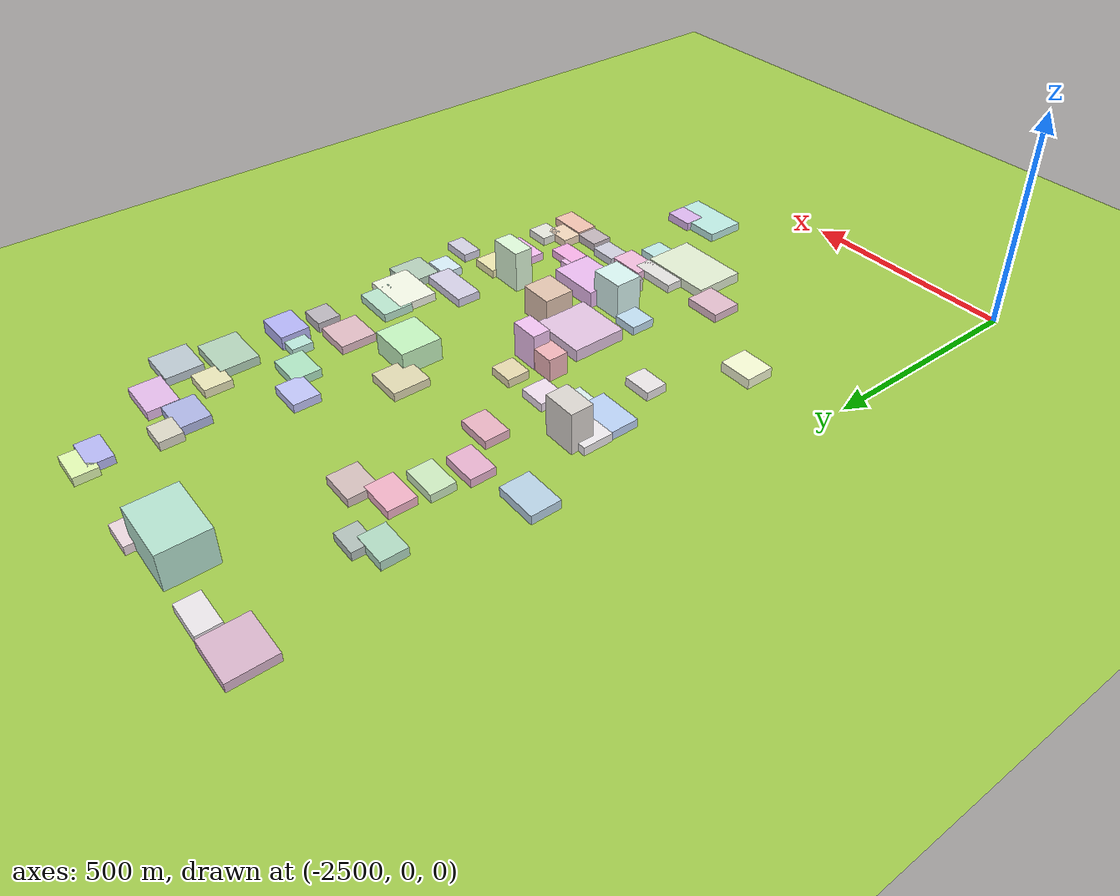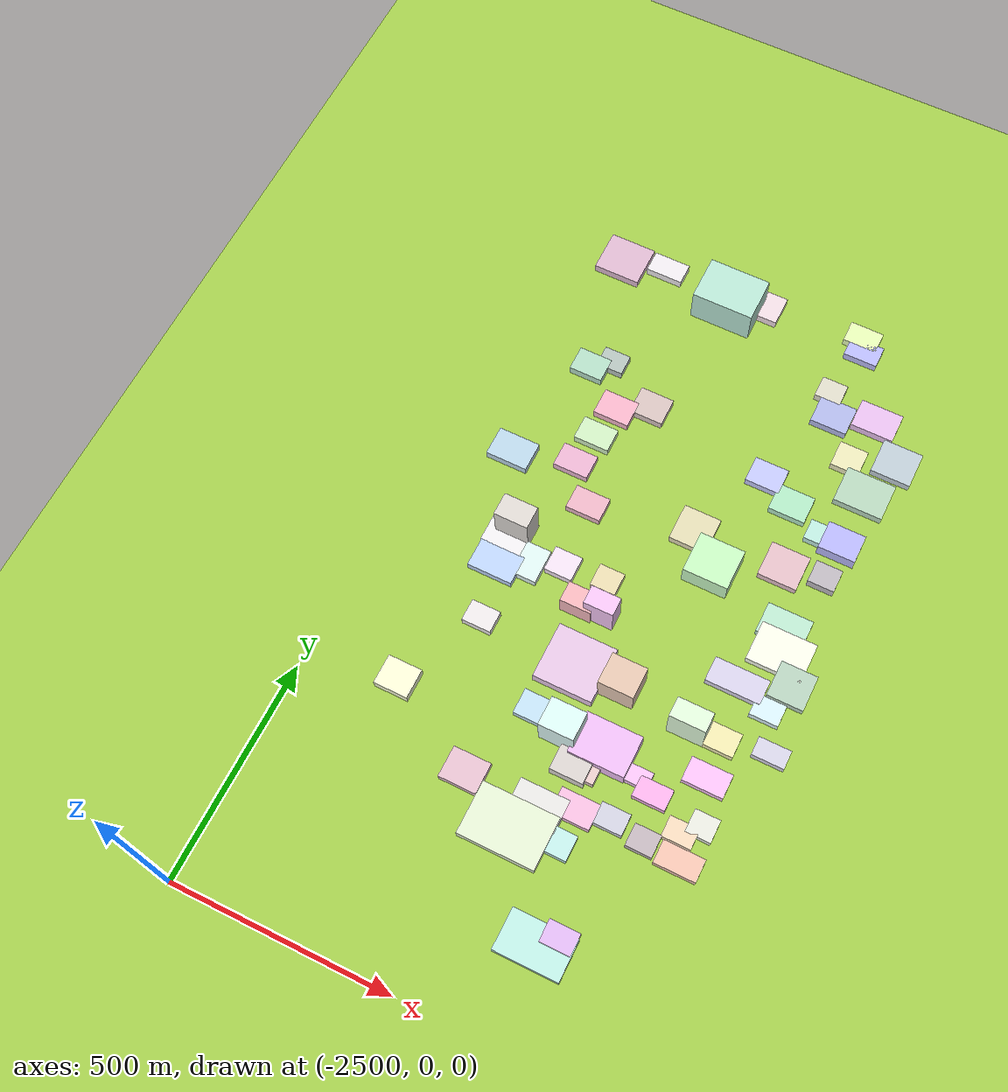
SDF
<sdf version="1.9">
 <world name="city_map">
  <model name="ground_plane">
   <static>1</static>
   <link name="link">
    <collision name="collision">
     <geometry><plane><normal>0 0 1</normal><size>11000 11000</size></plane></geometry>
    </collision>
    <visual name="visual">
     <geometry><plane><normal>0 0 1</normal><size>11000 11000</size></plane></geometry>
     <material>
      <ambient>0.551 0.712 0.210 1</ambient>
      <diffuse>0.651 0.812 0.310 1</diffuse>
      <specular>0.1 0.1 0.05 1</specular>
     </material>
    </visual>
   </link>
  </model>
  <model name="building_784531629">
   <static>1</static>
   <pose>-1949.281690694979 390.4246612366957 12.0 0 0 0</pose>
   <link name="link">
    <collision name="collision">
     <geometry><box><size>173.37089999985267 118.68830927840376 24.0</size></box></geometry>
    </collision>
    <visual name="visual">
     <cast_shadows>false</cast_shadows>
     <geometry><box><size>173.37089999985267 118.68830927840376 24.0</size></box></geometry>
     <material>
      <ambient>0.800 0.849 0.738 1</ambient>
      <diffuse>0.900 0.949 0.838 1</diffuse>
      <specular>0.270 0.285 0.252 1</specular>
      <emissive>0.01 0.01 0.01 1</emissive>
     </material>
    </visual>
   </link>
  </model>
  <model name="building_318686537">
   <static>1</static>
   <pose>-1979.383314808058 755.0847811302957 14.463169972019635 0 0 0</pose>
   <link name="link">
    <collision name="collision">
     <geometry><box><size>134.73180000023888 127.8774460867967 28.92633994403927</size></box></geometry>
    </collision>
    <visual name="visual">
     <cast_shadows>false</cast_shadows>
     <geometry><box><size>134.73180000023888 127.8774460867967 28.92633994403927</size></box></geometry>
     <material>
      <ambient>0.806 0.686 0.802 1</ambient>
      <diffuse>0.906 0.786 0.902 1</diffuse>
      <specular>0.272 0.236 0.271 1</specular>
      <emissive>0.01 0.01 0.01 1</emissive>
     </material>
    </visual>
   </link>
  </model>
  <model name="building_911968673">
   <static>1</static>
   <pose>-2047.931431842257 1699.4180093918642 42.236131468695206 0 0 0</pose>
   <link name="link">
    <collision name="collision">
     <geometry><box><size>142.9901630780476 104.65080000047067 84.47226293739041</size></box></geometry>
    </collision>
    <visual name="visual">
     <cast_shadows>false</cast_shadows>
     <geometry><box><size>142.9901630780476 104.65080000047067 84.47226293739041</size></box></geometry>
     <material>
      <ambient>0.625 0.803 0.732 1</ambient>
      <diffuse>0.725 0.903 0.832 1</diffuse>
      <specular>0.218 0.271 0.250 1</specular>
      <emissive>0.01 0.01 0.01 1</emissive>
     </material>
    </visual>
   </link>
  </model>
  <model name="building_832497104">
   <static>1</static>
   <pose>-1796.6452159532164 206.62394641435614 10.0 0 0 0</pose>
   <link name="link">
    <collision name="collision">
     <geometry><box><size>145.14138362688527 91.79700000011337 20</size></box></geometry>
    </collision>
    <visual name="visual">
     <cast_shadows>false</cast_shadows>
     <geometry><box><size>145.14138362688527 91.79700000011337 20</size></box></geometry>
     <material>
      <ambient>0.654 0.836 0.803 1</ambient>
      <diffuse>0.754 0.936 0.903 1</diffuse>
      <specular>0.226 0.281 0.271 1</specular>
      <emissive>0.01 0.01 0.01 1</emissive>
     </material>
    </visual>
   </link>
  </model>
  <model name="building_452026678">
   <static>1</static>
   <pose>-1846.4383587730215 621.4358117214804 20.262774250292598 0 0 0</pose>
   <link name="link">
    <collision name="collision">
     <geometry><box><size>126.6176999992723 94.31688275214437 40.525548500585195</size></box></geometry>
    </collision>
    <visual name="visual">
     <cast_shadows>false</cast_shadows>
     <geometry><box><size>126.6176999992723 94.31688275214437 40.525548500585195</size></box></geometry>
     <material>
      <ambient>0.838 0.650 0.858 1</ambient>
      <diffuse>0.938 0.750 0.958 1</diffuse>
      <specular>0.281 0.225 0.287 1</specular>
      <emissive>0.01 0.01 0.01 1</emissive>
     </material>
    </visual>
   </link>
  </model>
  <model name="building_316258750">
   <static>1</static>
   <pose>-1605.084572294025 968.8933447359544 10.0 0 0 0</pose>
   <link name="link">
    <collision name="collision">
     <geometry><box><size>125.00180049665161 91.64159999987476 20</size></box></geometry>
    </collision>
    <visual name="visual">
     <cast_shadows>false</cast_shadows>
     <geometry><box><size>125.00180049665161 91.64159999987476 20</size></box></geometry>
     <material>
      <ambient>0.872 0.888 0.818 1</ambient>
      <diffuse>0.972 0.988 0.918 1</diffuse>
      <specular>0.292 0.296 0.275 1</specular>
      <emissive>0.01 0.01 0.01 1</emissive>
     </material>
    </visual>
   </link>
  </model>
  <model name="building_733829572">
   <static>1</static>
   <pose>-2316.1012690740595 1708.9561754167369 10.0 0 0 0</pose>
   <link name="link">
    <collision name="collision">
     <geometry><box><size>107.51460000002311 96.89544181515132 20</size></box></geometry>
    </collision>
    <visual name="visual">
     <cast_shadows>false</cast_shadows>
     <geometry><box><size>107.51460000002311 96.89544181515132 20</size></box></geometry>
     <material>
      <ambient>0.770 0.627 0.718 1</ambient>
      <diffuse>0.870 0.727 0.818 1</diffuse>
      <specular>0.261 0.218 0.245 1</specular>
      <emissive>0.01 0.01 0.01 1</emissive>
     </material>
    </visual>
   </link>
  </model>
  <model name="building_379907250">
   <static>1</static>
   <pose>-1812.9707138432793 1081.4573936623158 27.0 0 0 0</pose>
   <link name="link">
    <collision name="collision">
     <geometry><box><size>102.76904150693875 95.02710000000292 54.0</size></box></geometry>
    </collision>
    <visual name="visual">
     <cast_shadows>false</cast_shadows>
     <geometry><box><size>102.76904150693875 95.02710000000292 54.0</size></box></geometry>
     <material>
      <ambient>0.684 0.874 0.665 1</ambient>
      <diffuse>0.784 0.974 0.765 1</diffuse>
      <specular>0.235 0.292 0.229 1</specular>
      <emissive>0.01 0.01 0.01 1</emissive>
     </material>
    </visual>
   </link>
  </model>
  <model name="building_130134647">
   <static>1</static>
   <pose>-1586.8013513641895 1387.037816854881 10.5 0 0 0</pose>
   <link name="link">
    <collision name="collision">
     <geometry><box><size>112.29677394903052 86.66880000012611 21.0</size></box></geometry>
    </collision>
    <visual name="visual">
     <cast_shadows>false</cast_shadows>
     <geometry><box><size>112.29677394903052 86.66880000012611 21.0</size></box></geometry>
     <material>
      <ambient>0.621 0.744 0.645 1</ambient>
      <diffuse>0.721 0.844 0.745 1</diffuse>
      <specular>0.216 0.253 0.224 1</specular>
      <emissive>0.01 0.01 0.01 1</emissive>
     </material>
    </visual>
   </link>
  </model>
  <model name="building_596379735">
   <static>1</static>
   <pose>-1915.902425725591 451.3255763390979 10.0 0 0 0</pose>
   <link name="link">
    <collision name="collision">
     <geometry><box><size>110.78909999964281 77.81463291668645 20</size></box></geometry>
    </collision>
    <visual name="visual">
     <cast_shadows>false</cast_shadows>
     <geometry><box><size>110.78909999964281 77.81463291668645 20</size></box></geometry>
     <material>
      <ambient>0.809 0.806 0.798 1</ambient>
      <diffuse>0.909 0.906 0.898 1</diffuse>
      <specular>0.273 0.272 0.269 1</specular>
      <emissive>0.01 0.01 0.01 1</emissive>
     </material>
    </visual>
   </link>
  </model>
  <model name="building_92837957">
   <static>1</static>
   <pose>-1550.6684819677523 1487.3604151621364 10.0 0 0 0</pose>
   <link name="link">
    <collision name="collision">
     <geometry><box><size>90.98670000010856 83.53715623528005 20</size></box></geometry>
    </collision>
    <visual name="visual">
     <cast_shadows>false</cast_shadows>
     <geometry><box><size>90.98670000010856 83.53715623528005 20</size></box></geometry>
     <material>
      <ambient>0.651 0.701 0.737 1</ambient>
      <diffuse>0.751 0.801 0.837 1</diffuse>
      <specular>0.225 0.240 0.251 1</specular>
      <emissive>0.01 0.01 0.01 1</emissive>
     </material>
    </visual>
   </link>
  </model>
  <model name="building_165059865">
   <static>1</static>
   <pose>-2184.615501969425 921.5501935525426 10.0 0 0 0</pose>
   <link name="link">
    <collision name="collision">
     <geometry><box><size>95.48220000058905 79.15081115538072 20</size></box></geometry>
    </collision>
    <visual name="visual">
     <cast_shadows>false</cast_shadows>
     <geometry><box><size>95.48220000058905 79.15081115538072 20</size></box></geometry>
     <material>
      <ambient>0.778 0.858 0.851 1</ambient>
      <diffuse>0.878 0.958 0.951 1</diffuse>
      <specular>0.264 0.287 0.285 1</specular>
      <emissive>0.01 0.01 0.01 1</emissive>
     </material>
    </visual>
   </link>
  </model>
  <model name="building_528338264">
   <static>1</static>
   <pose>-1621.8229608934544 1023.7256231455665 10.0 0 0 0</pose>
   <link name="link">
    <collision name="collision">
     <geometry><box><size>102.91887014322202 70.94010000008666 20</size></box></geometry>
    </collision>
    <visual name="visual">
     <cast_shadows>false</cast_shadows>
     <geometry><box><size>102.91887014322202 70.94010000008666 20</size></box></geometry>
     <material>
      <ambient>0.644 0.815 0.721 1</ambient>
      <diffuse>0.744 0.915 0.821 1</diffuse>
      <specular>0.223 0.275 0.246 1</specular>
      <emissive>0.01 0.01 0.01 1</emissive>
     </material>
    </visual>
   </link>
  </model>
  <model name="building_468145141">
   <static>1</static>
   <pose>-1676.9928165639285 1150.9171008150838 10.0 0 0 0</pose>
   <link name="link">
    <collision name="collision">
     <geometry><box><size>88.63447099138845 82.31759999975452 20</size></box></geometry>
    </collision>
    <visual name="visual">
     <cast_shadows>false</cast_shadows>
     <geometry><box><size>88.63447099138845 82.31759999975452 20</size></box></geometry>
     <material>
      <ambient>0.797 0.652 0.686 1</ambient>
      <diffuse>0.897 0.752 0.786 1</diffuse>
      <specular>0.269 0.226 0.236 1</specular>
      <emissive>0.01 0.01 0.01 1</emissive>
     </material>
    </visual>
   </link>
  </model>
  <model name="building_105975189">
   <static>1</static>
   <pose>-1883.06066906498 1146.481777539104 10.0 0 0 0</pose>
   <link name="link">
    <collision name="collision">
     <geometry><box><size>85.30349999994513 85.00151773802787 20</size></box></geometry>
    </collision>
    <visual name="visual">
     <cast_shadows>false</cast_shadows>
     <geometry><box><size>85.30349999994513 85.00151773802787 20</size></box></geometry>
     <material>
      <ambient>0.794 0.766 0.615 1</ambient>
      <diffuse>0.894 0.866 0.715 1</diffuse>
      <specular>0.268 0.260 0.214 1</specular>
      <emissive>0.01 0.01 0.01 1</emissive>
     </material>
    </visual>
   </link>
  </model>
  <model name="building_154736615">
   <static>1</static>
   <pose>-1662.2643469641407 870.4580174370398 10.5 0 0 0</pose>
   <link name="link">
    <collision name="collision">
     <geometry><box><size>123.77522986772952 56.70989999941867 21.0</size></box></geometry>
    </collision>
    <visual name="visual">
     <cast_shadows>false</cast_shadows>
     <geometry><box><size>123.77522986772952 56.70989999941867 21.0</size></box></geometry>
     <material>
      <ambient>0.751 0.731 0.821 1</ambient>
      <diffuse>0.851 0.831 0.921 1</diffuse>
      <specular>0.255 0.249 0.276 1</specular>
      <emissive>0.01 0.01 0.01 1</emissive>
     </material>
    </visual>
   </link>
  </model>
  <model name="building_281971564">
   <static>1</static>
   <pose>-2233.7528420950734 890.0766380424536 10.0 0 0 0</pose>
   <link name="link">
    <collision name="collision">
     <geometry><box><size>103.52969999998862 66.2194411822157 20</size></box></geometry>
    </collision>
    <visual name="visual">
     <cast_shadows>false</cast_shadows>
     <geometry><box><size>103.52969999998862 66.2194411822157 20</size></box></geometry>
     <material>
      <ambient>0.648 0.739 0.879 1</ambient>
      <diffuse>0.748 0.839 0.979 1</diffuse>
      <specular>0.224 0.252 0.294 1</specular>
      <emissive>0.01 0.01 0.01 1</emissive>
     </material>
    </visual>
   </link>
  </model>
  <model name="building_222092516">
   <static>1</static>
   <pose>-1628.4968522832385 1566.402666893458 10.5 0 0 0</pose>
   <link name="link">
    <collision name="collision">
     <geometry><box><size>98.23495010766914 68.7201000001707 21.0</size></box></geometry>
    </collision>
    <visual name="visual">
     <cast_shadows>false</cast_shadows>
     <geometry><box><size>98.23495010766914 68.7201000001707 21.0</size></box></geometry>
     <material>
      <ambient>0.810 0.652 0.833 1</ambient>
      <diffuse>0.910 0.752 0.933 1</diffuse>
      <specular>0.273 0.226 0.280 1</specular>
      <emissive>0.01 0.01 0.01 1</emissive>
     </material>
    </visual>
   </link>
  </model>
  <model name="building_219024905">
   <static>1</static>
   <pose>-1556.0352847130846 909.6141433605732 10.0 0 0 0</pose>
   <link name="link">
    <collision name="collision">
     <geometry><box><size>82.15110000017489 82.1290436276584 20</size></box></geometry>
    </collision>
    <visual name="visual">
     <cast_shadows>false</cast_shadows>
     <geometry><box><size>82.15110000017489 82.1290436276584 20</size></box></geometry>
     <material>
      <ambient>0.623 0.724 0.649 1</ambient>
      <diffuse>0.723 0.824 0.749 1</diffuse>
      <specular>0.217 0.247 0.225 1</specular>
      <emissive>0.01 0.01 0.01 1</emissive>
     </material>
    </visual>
   </link>
  </model>
  <model name="building_206532737">
   <static>1</static>
   <pose>-2240.9730802927484 957.4037146306335 10.0 0 0 0</pose>
   <link name="link">
    <collision name="collision">
     <geometry><box><size>93.82829999940157 69.98646413571788 20</size></box></geometry>
    </collision>
    <visual name="visual">
     <cast_shadows>false</cast_shadows>
     <geometry><box><size>93.82829999940157 69.98646413571788 20</size></box></geometry>
     <material>
      <ambient>0.846 0.835 0.845 1</ambient>
      <diffuse>0.946 0.935 0.945 1</diffuse>
      <specular>0.284 0.281 0.283 1</specular>
      <emissive>0.01 0.01 0.01 1</emissive>
     </material>
    </visual>
   </link>
  </model>
  <model name="building_82842089">
   <static>1</static>
   <pose>-2323.8473167542215 1146.6236569718046 10.5 0 0 0</pose>
   <link name="link">
    <collision name="collision">
     <geometry><box><size>96.30359999993487 67.96485911413048 21.0</size></box></geometry>
    </collision>
    <visual name="visual">
     <cast_shadows>false</cast_shadows>
     <geometry><box><size>96.30359999993487 67.96485911413048 21.0</size></box></geometry>
     <material>
      <ambient>0.636 0.742 0.815 1</ambient>
      <diffuse>0.736 0.842 0.915 1</diffuse>
      <specular>0.221 0.253 0.274 1</specular>
      <emissive>0.01 0.01 0.01 1</emissive>
     </material>
    </visual>
   </link>
  </model>
  <model name="building_4440151">
   <static>1</static>
   <pose>-2080.3256446305936 453.643795480554 10.0 0 0 0</pose>
   <link name="link">
    <collision name="collision">
     <geometry><box><size>85.58100000003321 70.25054797653505 20</size></box></geometry>
    </collision>
    <visual name="visual">
     <cast_shadows>false</cast_shadows>
     <geometry><box><size>85.58100000003321 70.25054797653505 20</size></box></geometry>
     <material>
      <ambient>0.802 0.658 0.717 1</ambient>
      <diffuse>0.902 0.758 0.817 1</diffuse>
      <specular>0.271 0.227 0.245 1</specular>
      <emissive>0.01 0.01 0.01 1</emissive>
     </material>
    </visual>
   </link>
  </model>
  <model name="building_173963869">
   <static>1</static>
   <pose>-1721.0536212428456 1537.6081630032209 10.5 0 0 0</pose>
   <link name="link">
    <collision name="collision">
     <geometry><box><size>83.91600000029342 69.18151599846756 21.0</size></box></geometry>
    </collision>
    <visual name="visual">
     <cast_shadows>false</cast_shadows>
     <geometry><box><size>83.91600000029342 69.18151599846756 21.0</size></box></geometry>
     <material>
      <ambient>0.602 0.629 0.813 1</ambient>
      <diffuse>0.702 0.729 0.913 1</diffuse>
      <specular>0.211 0.219 0.274 1</specular>
      <emissive>0.01 0.01 0.01 1</emissive>
     </material>
    </visual>
   </link>
  </model>
  <model name="building_804866573">
   <static>1</static>
   <pose>-1874.081465656565 759.173444279169 36.01048363562211 0 0 0</pose>
   <link name="link">
    <collision name="collision">
     <geometry><box><size>80.08649999970885 71.11721533385357 72.02096727124422</size></box></geometry>
    </collision>
    <visual name="visual">
     <cast_shadows>false</cast_shadows>
     <geometry><box><size>80.08649999970885 71.11721533385357 72.02096727124422</size></box></geometry>
     <material>
      <ambient>0.800 0.682 0.602 1</ambient>
      <diffuse>0.900 0.782 0.702 1</diffuse>
      <specular>0.270 0.235 0.211 1</specular>
      <emissive>0.01 0.01 0.01 1</emissive>
     </material>
    </visual>
   </link>
  </model>
  <model name="building_269107770">
   <static>1</static>
   <pose>-1586.9590594879398 1251.5100188763417 16.2823930991139 0 0 0</pose>
   <link name="link">
    <collision name="collision">
     <geometry><box><size>84.7838050502295 66.07830000005777 32.5647861982278</size></box></geometry>
    </collision>
    <visual name="visual">
     <cast_shadows>false</cast_shadows>
     <geometry><box><size>84.7838050502295 66.07830000005777 32.5647861982278</size></box></geometry>
     <material>
      <ambient>0.625 0.622 0.882 1</ambient>
      <diffuse>0.725 0.722 0.982 1</diffuse>
      <specular>0.218 0.217 0.295 1</specular>
      <emissive>0.01 0.01 0.01 1</emissive>
     </material>
    </visual>
   </link>
  </model>
  <model name="building_345595790">
   <static>1</static>
   <pose>-1719.6836595675263 1294.7557475760782 10.0 0 0 0</pose>
   <link name="link">
    <collision name="collision">
     <geometry><box><size>83.8272000000444 64.48518097197544 20</size></box></geometry>
    </collision>
    <visual name="visual">
     <cast_shadows>false</cast_shadows>
     <geometry><box><size>83.8272000000444 64.48518097197544 20</size></box></geometry>
     <material>
      <ambient>0.602 0.816 0.678 1</ambient>
      <diffuse>0.702 0.916 0.778 1</diffuse>
      <specular>0.211 0.275 0.233 1</specular>
      <emissive>0.01 0.01 0.01 1</emissive>
     </material>
    </visual>
   </link>
  </model>
  <model name="building_591548647">
   <static>1</static>
   <pose>-2296.291385364833 568.1208257094179 12.0 0 0 0</pose>
   <link name="link">
    <collision name="collision">
     <geometry><box><size>78.02870846394796 67.53239999969907 24.0</size></box></geometry>
    </collision>
    <visual name="visual">
     <cast_shadows>false</cast_shadows>
     <geometry><box><size>78.02870846394796 67.53239999969907 24.0</size></box></geometry>
     <material>
      <ambient>0.879 0.899 0.747 1</ambient>
      <diffuse>0.979 0.999 0.847 1</diffuse>
      <specular>0.294 0.300 0.254 1</specular>
      <emissive>0.01 0.01 0.01 1</emissive>
     </material>
    </visual>
   </link>
  </model>
  <model name="building_135750264">
   <static>1</static>
   <pose>-2163.510883217828 1340.7913165472007 10.0 0 0 0</pose>
   <link name="link">
    <collision name="collision">
     <geometry><box><size>82.83930000033024 62.62788630456443 20</size></box></geometry>
    </collision>
    <visual name="visual">
     <cast_shadows>false</cast_shadows>
     <geometry><box><size>82.83930000033024 62.62788630456443 20</size></box></geometry>
     <material>
      <ambient>0.862 0.615 0.693 1</ambient>
      <diffuse>0.962 0.715 0.793 1</diffuse>
      <specular>0.289 0.215 0.238 1</specular>
      <emissive>0.01 0.01 0.01 1</emissive>
     </material>
    </visual>
   </link>
  </model>
  <model name="building_414592736">
   <static>1</static>
   <pose>-1941.1829948605491 618.5149115384679 44.306683381385504 0 0 0</pose>
   <link name="link">
    <collision name="collision">
     <geometry><box><size>79.60138271308135 65.1570000003332 88.61336676277101</size></box></geometry>
    </collision>
    <visual name="visual">
     <cast_shadows>false</cast_shadows>
     <geometry><box><size>79.60138271308135 65.1570000003332 88.61336676277101</size></box></geometry>
     <material>
      <ambient>0.764 0.877 0.860 1</ambient>
      <diffuse>0.864 0.977 0.960 1</diffuse>
      <specular>0.259 0.293 0.288 1</specular>
      <emissive>0.01 0.01 0.01 1</emissive>
     </material>
    </visual>
   </link>
  </model>
  <model name="building_212145788">
   <static>1</static>
   <pose>-2094.8257158364654 1379.845643463711 10.0 0 0 0</pose>
   <link name="link">
    <collision name="collision">
     <geometry><box><size>78.13290000053996 65.63207744373817 20</size></box></geometry>
    </collision>
    <visual name="visual">
     <cast_shadows>false</cast_shadows>
     <geometry><box><size>78.13290000053996 65.63207744373817 20</size></box></geometry>
     <material>
      <ambient>0.747 0.667 0.656 1</ambient>
      <diffuse>0.847 0.767 0.756 1</diffuse>
      <specular>0.254 0.230 0.227 1</specular>
      <emissive>0.01 0.01 0.01 1</emissive>
     </material>
    </visual>
   </link>
  </model>
  <model name="building_407335049">
   <static>1</static>
   <pose>-1634.2244947687516 655.155693163705 10.0 0 0 0</pose>
   <link name="link">
    <collision name="collision">
     <geometry><box><size>91.89847814159302 54.67860000013047 20</size></box></geometry>
    </collision>
    <visual name="visual">
     <cast_shadows>false</cast_shadows>
     <geometry><box><size>91.89847814159302 54.67860000013047 20</size></box></geometry>
     <material>
      <ambient>0.887 0.668 0.866 1</ambient>
      <diffuse>0.987 0.768 0.966 1</diffuse>
      <specular>0.296 0.230 0.290 1</specular>
      <emissive>0.01 0.01 0.01 1</emissive>
     </material>
    </visual>
   </link>
  </model>
  <model name="building_220801282">
   <static>1</static>
   <pose>-1845.2198424690512 480.87254539603265 10.0 0 0 0</pose>
   <link name="link">
    <collision name="collision">
     <geometry><box><size>87.04619999980423 57.607420298761376 20</size></box></geometry>
    </collision>
    <visual name="visual">
     <cast_shadows>false</cast_shadows>
     <geometry><box><size>87.04619999980423 57.607420298761376 20</size></box></geometry>
     <material>
      <ambient>0.862 0.655 0.784 1</ambient>
      <diffuse>0.962 0.755 0.884 1</diffuse>
      <specular>0.289 0.226 0.265 1</specular>
      <emissive>0.01 0.01 0.01 1</emissive>
     </material>
    </visual>
   </link>
  </model>
  <model name="building_130487179">
   <static>1</static>
   <pose>-1965.9123874164497 1736.339914134098 10.0 0 0 0</pose>
   <link name="link">
    <collision name="collision">
     <geometry><box><size>69.89435270820228 69.8855999995942 20</size></box></geometry>
    </collision>
    <visual name="visual">
     <cast_shadows>false</cast_shadows>
     <geometry><box><size>69.89435270820228 69.8855999995942 20</size></box></geometry>
     <material>
      <ambient>0.842 0.765 0.793 1</ambient>
      <diffuse>0.942 0.865 0.893 1</diffuse>
      <specular>0.282 0.260 0.268 1</specular>
      <emissive>0.01 0.01 0.01 1</emissive>
     </material>
    </visual>
   </link>
  </model>
  <model name="building_169510429">
   <static>1</static>
   <pose>-1614.434716441937 476.15770184324293 10.0 0 0 0</pose>
   <link name="link">
    <collision name="collision">
     <geometry><box><size>93.2729183515675 51.22650000001272 20</size></box></geometry>
    </collision>
    <visual name="visual">
     <cast_shadows>false</cast_shadows>
     <geometry><box><size>93.2729183515675 51.22650000001272 20</size></box></geometry>
     <material>
      <ambient>0.859 0.676 0.604 1</ambient>
      <diffuse>0.959 0.776 0.704 1</diffuse>
      <specular>0.288 0.233 0.211 1</specular>
      <emissive>0.01 0.01 0.01 1</emissive>
     </material>
    </visual>
   </link>
  </model>
  <model name="building_343033802">
   <static>1</static>
   <pose>-1794.6278428711403 1333.9506324589547 10.0 0 0 0</pose>
   <link name="link">
    <collision name="collision">
     <geometry><box><size>78.441821751432 60.839100000350754 20</size></box></geometry>
    </collision>
    <visual name="visual">
     <cast_shadows>false</cast_shadows>
     <geometry><box><size>78.441821751432 60.839100000350754 20</size></box></geometry>
     <material>
      <ambient>0.672 0.688 0.890 1</ambient>
      <diffuse>0.772 0.788 0.990 1</diffuse>
      <specular>0.232 0.236 0.297 1</specular>
      <emissive>0.01 0.01 0.01 1</emissive>
     </material>
    </visual>
   </link>
  </model>
  <model name="building_124606818">
   <static>1</static>
   <pose>-2187.1576845077584 1181.7812688773429 10.0 0 0 0</pose>
   <link name="link">
    <collision name="collision">
     <geometry><box><size>80.9223354737312 57.40919999970373 20</size></box></geometry>
    </collision>
    <visual name="visual">
     <cast_shadows>false</cast_shadows>
     <geometry><box><size>80.9223354737312 57.40919999970373 20</size></box></geometry>
     <material>
      <ambient>0.823 0.614 0.725 1</ambient>
      <diffuse>0.923 0.714 0.825 1</diffuse>
      <specular>0.277 0.214 0.247 1</specular>
      <emissive>0.01 0.01 0.01 1</emissive>
     </material>
    </visual>
   </link>
  </model>
  <model name="building_450889549">
   <static>1</static>
   <pose>-2175.4715764476905 1261.6656103774376 10.0 0 0 0</pose>
   <link name="link">
    <collision name="collision">
     <geometry><box><size>82.0844999993966 56.301744116810276 20</size></box></geometry>
    </collision>
    <visual name="visual">
     <cast_shadows>false</cast_shadows>
     <geometry><box><size>82.0844999993966 56.301744116810276 20</size></box></geometry>
     <material>
      <ambient>0.719 0.837 0.668 1</ambient>
      <diffuse>0.819 0.937 0.768 1</diffuse>
      <specular>0.246 0.281 0.231 1</specular>
      <emissive>0.01 0.01 0.01 1</emissive>
     </material>
    </visual>
   </link>
  </model>
  <model name="building_112352581">
   <static>1</static>
   <pose>-2117.1171057028737 1100.3683148354992 10.0 0 0 0</pose>
   <link name="link">
    <collision name="collision">
     <geometry><box><size>80.12702840903204 56.976300000165736 20</size></box></geometry>
    </collision>
    <visual name="visual">
     <cast_shadows>false</cast_shadows>
     <geometry><box><size>80.12702840903204 56.976300000165736 20</size></box></geometry>
     <material>
      <ambient>0.827 0.618 0.679 1</ambient>
      <diffuse>0.927 0.718 0.779 1</diffuse>
      <specular>0.278 0.215 0.234 1</specular>
      <emissive>0.01 0.01 0.01 1</emissive>
     </material>
    </visual>
   </link>
  </model>
  <model name="building_590504142">
   <static>1</static>
   <pose>-1889.8094453491508 558.328116612123 15.78554117378804 0 0 0</pose>
   <link name="link">
    <collision name="collision">
     <geometry><box><size>75.4022999993893 59.74740563697774 31.57108234757608</size></box></geometry>
    </collision>
    <visual name="visual">
     <cast_shadows>false</cast_shadows>
     <geometry><box><size>75.4022999993893 59.74740563697774 31.57108234757608</size></box></geometry>
     <material>
      <ambient>0.757 0.731 0.718 1</ambient>
      <diffuse>0.857 0.831 0.818 1</diffuse>
      <specular>0.257 0.249 0.245 1</specular>
      <emissive>0.01 0.01 0.01 1</emissive>
     </material>
    </visual>
   </link>
  </model>
  <model name="building_372750752">
   <static>1</static>
   <pose>-2263.6130667873717 1416.3324795233066 10.5 0 0 0</pose>
   <link name="link">
    <collision name="collision">
     <geometry><box><size>77.13721205523511 57.875400000419575 21.0</size></box></geometry>
    </collision>
    <visual name="visual">
     <cast_shadows>false</cast_shadows>
     <geometry><box><size>77.13721205523511 57.875400000419575 21.0</size></box></geometry>
     <material>
      <ambient>0.611 0.771 0.680 1</ambient>
      <diffuse>0.711 0.871 0.780 1</diffuse>
      <specular>0.213 0.261 0.234 1</specular>
      <emissive>0.01 0.01 0.01 1</emissive>
     </material>
    </visual>
   </link>
  </model>
  <model name="building_695843956">
   <static>1</static>
   <pose>-1871.5829307462589 567.8539578870929 10.0 0 0 0</pose>
   <link name="link">
    <collision name="collision">
     <geometry><box><size>73.89269999988812 58.335782679989315 20</size></box></geometry>
    </collision>
    <visual name="visual">
     <cast_shadows>false</cast_shadows>
     <geometry><box><size>73.89269999988812 58.335782679989315 20</size></box></geometry>
     <material>
      <ambient>0.819 0.708 0.704 1</ambient>
      <diffuse>0.919 0.808 0.804 1</diffuse>
      <specular>0.276 0.242 0.241 1</specular>
      <emissive>0.01 0.01 0.01 1</emissive>
     </material>
    </visual>
   </link>
  </model>
  <model name="building_971585615">
   <static>1</static>
   <pose>-2214.6075985917228 1730.3848698375457 10.0 0 0 0</pose>
   <link name="link">
    <collision name="collision">
     <geometry><box><size>85.41001039775423 49.88340000009117 20</size></box></geometry>
    </collision>
    <visual name="visual">
     <cast_shadows>false</cast_shadows>
     <geometry><box><size>85.41001039775423 49.88340000009117 20</size></box></geometry>
     <material>
      <ambient>0.837 0.818 0.835 1</ambient>
      <diffuse>0.937 0.918 0.935 1</diffuse>
      <specular>0.281 0.275 0.280 1</specular>
      <emissive>0.01 0.01 0.01 1</emissive>
     </material>
    </visual>
   </link>
  </model>
  <model name="building_159728683">
   <static>1</static>
   <pose>-1852.0130257849537 404.1184266457156 10.0 0 0 0</pose>
   <link name="link">
    <collision name="collision">
     <geometry><box><size>73.5819000001996 56.190067153406034 20</size></box></geometry>
    </collision>
    <visual name="visual">
     <cast_shadows>false</cast_shadows>
     <geometry><box><size>73.5819000001996 56.190067153406034 20</size></box></geometry>
     <material>
      <ambient>0.670 0.835 0.820 1</ambient>
      <diffuse>0.770 0.935 0.920 1</diffuse>
      <specular>0.231 0.281 0.276 1</specular>
      <emissive>0.01 0.01 0.01 1</emissive>
     </material>
    </visual>
   </link>
  </model>
  <model name="building_968254108">
   <static>1</static>
   <pose>-2230.757947502958 983.0015643298176 48.58752828016168 0 0 0</pose>
   <link name="link">
    <collision name="collision">
     <geometry><box><size>78.42149999996906 52.611094523840244 97.17505656032336</size></box></geometry>
    </collision>
    <visual name="visual">
     <cast_shadows>false</cast_shadows>
     <geometry><box><size>78.42149999996906 52.611094523840244 97.17505656032336</size></box></geometry>
     <material>
      <ambient>0.773 0.752 0.731 1</ambient>
      <diffuse>0.873 0.852 0.831 1</diffuse>
      <specular>0.262 0.256 0.249 1</specular>
      <emissive>0.01 0.01 0.01 1</emissive>
     </material>
    </visual>
   </link>
  </model>
  <model name="building_4444255">
   <static>1</static>
   <pose>-1648.4988727173386 1452.0654245682533 10.0 0 0 0</pose>
   <link name="link">
    <collision name="collision">
     <geometry><box><size>65.57046124734242 61.66049999969658 20</size></box></geometry>
    </collision>
    <visual name="visual">
     <cast_shadows>false</cast_shadows>
     <geometry><box><size>65.57046124734242 61.66049999969658 20</size></box></geometry>
     <material>
      <ambient>0.826 0.814 0.637 1</ambient>
      <diffuse>0.926 0.914 0.737 1</diffuse>
      <specular>0.278 0.274 0.221 1</specular>
      <emissive>0.01 0.01 0.01 1</emissive>
     </material>
    </visual>
   </link>
  </model>
  <model name="building_830724699">
   <static>1</static>
   <pose>-1736.434077164698 1755.0940504619618 10.0 0 0 0</pose>
   <link name="link">
    <collision name="collision">
     <geometry><box><size>77.78691210643808 51.30420000013203 20</size></box></geometry>
    </collision>
    <visual name="visual">
     <cast_shadows>false</cast_shadows>
     <geometry><box><size>77.78691210643808 51.30420000013203 20</size></box></geometry>
     <material>
      <ambient>0.807 0.898 0.619 1</ambient>
      <diffuse>0.907 0.998 0.719 1</diffuse>
      <specular>0.272 0.299 0.216 1</specular>
      <emissive>0.01 0.01 0.01 1</emissive>
     </material>
    </visual>
   </link>
  </model>
  <model name="building_154793293">
   <static>1</static>
   <pose>-1721.3386149805394 1720.812250232756 10.0 0 0 0</pose>
   <link name="link">
    <collision name="collision">
     <geometry><box><size>77.93598212405695 51.15990000002313 20</size></box></geometry>
    </collision>
    <visual name="visual">
     <cast_shadows>false</cast_shadows>
     <geometry><box><size>77.93598212405695 51.15990000002313 20</size></box></geometry>
     <material>
      <ambient>0.633 0.637 0.876 1</ambient>
      <diffuse>0.733 0.737 0.976 1</diffuse>
      <specular>0.220 0.221 0.293 1</specular>
      <emissive>0.01 0.01 0.01 1</emissive>
     </material>
    </visual>
   </link>
  </model>
  <model name="building_934514152">
   <static>1</static>
   <pose>-2102.1108784533963 948.2870136641961 10.0 0 0 0</pose>
   <link name="link">
    <collision name="collision">
     <geometry><box><size>63.58488985378567 57.941999999620464 20</size></box></geometry>
    </collision>
    <visual name="visual">
     <cast_shadows>false</cast_shadows>
     <geometry><box><size>63.58488985378567 57.941999999620464 20</size></box></geometry>
     <material>
      <ambient>0.855 0.793 0.853 1</ambient>
      <diffuse>0.955 0.893 0.953 1</diffuse>
      <specular>0.286 0.268 0.286 1</specular>
      <emissive>0.01 0.01 0.01 1</emissive>
     </material>
    </visual>
   </link>
  </model>
  <model name="building_429836583">
   <static>1</static>
   <pose>-1638.9623027073876 741.4477708656592 10.0 0 0 0</pose>
   <link name="link">
    <collision name="collision">
     <geometry><box><size>67.30195206399374 54.23460000046276 20</size></box></geometry>
    </collision>
    <visual name="visual">
     <cast_shadows>false</cast_shadows>
     <geometry><box><size>67.30195206399374 54.23460000046276 20</size></box></geometry>
     <material>
      <ambient>0.848 0.823 0.605 1</ambient>
      <diffuse>0.948 0.923 0.705 1</diffuse>
      <specular>0.284 0.277 0.211 1</specular>
      <emissive>0.01 0.01 0.01 1</emissive>
     </material>
    </visual>
   </link>
  </model>
  <model name="building_66884497">
   <static>1</static>
   <pose>-1712.130314532763 736.2897610426742 50.0 0 0 0</pose>
   <link name="link">
    <collision name="collision">
     <geometry><box><size>81.23375687147694 44.61089999999501 100</size></box></geometry>
    </collision>
    <visual name="visual">
     <cast_shadows>false</cast_shadows>
     <geometry><box><size>81.23375687147694 44.61089999999501 100</size></box></geometry>
     <material>
      <ambient>0.786 0.894 0.767 1</ambient>
      <diffuse>0.886 0.994 0.867 1</diffuse>
      <specular>0.266 0.298 0.260 1</specular>
      <emissive>0.01 0.01 0.01 1</emissive>
     </material>
    </visual>
   </link>
  </model>
  <model name="building_486237954">
   <static>1</static>
   <pose>-1779.3805086356888 596.2650419598283 10.0 0 0 0</pose>
   <link name="link">
    <collision name="collision">
     <geometry><box><size>92.0301000004713 38.50082911728741 20</size></box></geometry>
    </collision>
    <visual name="visual">
     <cast_shadows>false</cast_shadows>
     <geometry><box><size>92.0301000004713 38.50082911728741 20</size></box></geometry>
     <material>
      <ambient>0.870 0.678 0.861 1</ambient>
      <diffuse>0.970 0.778 0.961 1</diffuse>
      <specular>0.291 0.234 0.288 1</specular>
      <emissive>0.01 0.01 0.01 1</emissive>
     </material>
    </visual>
   </link>
  </model>
  <model name="building_459586054">
   <static>1</static>
   <pose>-1719.3747142498162 577.4587285491069 10.0 0 0 0</pose>
   <link name="link">
    <collision name="collision">
     <geometry><box><size>73.50420000008029 47.415484742538645 20</size></box></geometry>
    </collision>
    <visual name="visual">
     <cast_shadows>false</cast_shadows>
     <geometry><box><size>73.50420000008029 47.415484742538645 20</size></box></geometry>
     <material>
      <ambient>0.886 0.611 0.823 1</ambient>
      <diffuse>0.986 0.711 0.923 1</diffuse>
      <specular>0.296 0.213 0.277 1</specular>
      <emissive>0.01 0.01 0.01 1</emissive>
     </material>
    </visual>
   </link>
  </model>
  <model name="building_124977392">
   <static>1</static>
   <pose>-2018.863608032869 633.398367679531 10.0 0 0 0</pose>
   <link name="link">
    <collision name="collision">
     <geometry><box><size>59.21297526174261 57.076200000544475 20</size></box></geometry>
    </collision>
    <visual name="visual">
     <cast_shadows>false</cast_shadows>
     <geometry><box><size>59.21297526174261 57.076200000544475 20</size></box></geometry>
     <material>
      <ambient>0.670 0.786 0.859 1</ambient>
      <diffuse>0.770 0.886 0.959 1</diffuse>
      <specular>0.231 0.266 0.288 1</specular>
      <emissive>0.01 0.01 0.01 1</emissive>
     </material>
    </visual>
   </link>
  </model>
  <model name="building_33537633">
   <static>1</static>
   <pose>-1760.0252231633672 238.9232045426496 10.5 0 0 0</pose>
   <link name="link">
    <collision name="collision">
     <geometry><box><size>68.03821636594333 49.65029999973325 21.0</size></box></geometry>
    </collision>
    <visual name="visual">
     <cast_shadows>false</cast_shadows>
     <geometry><box><size>68.03821636594333 49.65029999973325 21.0</size></box></geometry>
     <material>
      <ambient>0.782 0.633 0.852 1</ambient>
      <diffuse>0.882 0.733 0.952 1</diffuse>
      <specular>0.265 0.220 0.286 1</specular>
      <emissive>0.01 0.01 0.01 1</emissive>
     </material>
    </visual>
   </link>
  </model>
  <model name="building_429986180">
   <static>1</static>
   <pose>-2204.1358494292435 764.2478934498833 10.5 0 0 0</pose>
   <link name="link">
    <collision name="collision">
     <geometry><box><size>66.84419999954372 50.189126854481856 21.0</size></box></geometry>
    </collision>
    <visual name="visual">
     <cast_shadows>false</cast_shadows>
     <geometry><box><size>66.84419999954372 50.189126854481856 21.0</size></box></geometry>
     <material>
      <ambient>0.832 0.812 0.817 1</ambient>
      <diffuse>0.932 0.912 0.917 1</diffuse>
      <specular>0.280 0.274 0.275 1</specular>
      <emissive>0.01 0.01 0.01 1</emissive>
     </material>
    </visual>
   </link>
  </model>
  <model name="building_480998852">
   <static>1</static>
   <pose>-2030.5006511162337 880.8395070099524 27.0 0 0 0</pose>
   <link name="link">
    <collision name="collision">
     <geometry><box><size>70.81823315575407 46.91970000015999 54.0</size></box></geometry>
    </collision>
    <visual name="visual">
     <cast_shadows>false</cast_shadows>
     <geometry><box><size>70.81823315575407 46.91970000015999 54.0</size></box></geometry>
     <material>
      <ambient>0.862 0.623 0.644 1</ambient>
      <diffuse>0.962 0.723 0.744 1</diffuse>
      <specular>0.289 0.217 0.223 1</specular>
      <emissive>0.01 0.01 0.01 1</emissive>
     </material>
    </visual>
   </link>
  </model>
  <model name="building_145374470">
   <static>1</static>
   <pose>-2036.328916538762 1673.4660401371998 10.0 0 0 0</pose>
   <link name="link">
    <collision name="collision">
     <geometry><box><size>69.04459284877034 48.02970000051232 20</size></box></geometry>
    </collision>
    <visual name="visual">
     <cast_shadows>false</cast_shadows>
     <geometry><box><size>69.04459284877034 48.02970000051232 20</size></box></geometry>
     <material>
      <ambient>0.609 0.791 0.884 1</ambient>
      <diffuse>0.709 0.891 0.984 1</diffuse>
      <specular>0.213 0.267 0.295 1</specular>
      <emissive>0.01 0.01 0.01 1</emissive>
     </material>
    </visual>
   </link>
  </model>
  <model name="building_199947905">
   <static>1</static>
   <pose>-1588.8742226444024 1165.9051749502419 12.0 0 0 0</pose>
   <link name="link">
    <collision name="collision">
     <geometry><box><size>60.18419999979585 52.69017606780321 24.0</size></box></geometry>
    </collision>
    <visual name="visual">
     <cast_shadows>false</cast_shadows>
     <geometry><box><size>60.18419999979585 52.69017606780321 24.0</size></box></geometry>
     <material>
      <ambient>0.648 0.627 0.654 1</ambient>
      <diffuse>0.748 0.727 0.754 1</diffuse>
      <specular>0.224 0.218 0.226 1</specular>
      <emissive>0.01 0.01 0.01 1</emissive>
     </material>
    </visual>
   </link>
  </model>
  <model name="building_14349140">
   <static>1</static>
   <pose>-1580.8200996918308 839.423566644245 10.0 0 0 0</pose>
   <link name="link">
    <collision name="collision">
     <geometry><box><size>64.8017999993371 48.55430458459746 20</size></box></geometry>
    </collision>
    <visual name="visual">
     <cast_shadows>false</cast_shadows>
     <geometry><box><size>64.8017999993371 48.55430458459746 20</size></box></geometry>
     <material>
      <ambient>0.757 0.849 0.884 1</ambient>
      <diffuse>0.857 0.949 0.984 1</diffuse>
      <specular>0.257 0.285 0.295 1</specular>
      <emissive>0.01 0.01 0.01 1</emissive>
     </material>
    </visual>
   </link>
  </model>
  <model name="building_401733825">
   <static>1</static>
   <pose>-1770.794625669417 494.1800637108814 10.0 0 0 0</pose>
   <link name="link">
    <collision name="collision">
     <geometry><box><size>64.55760000042687 48.132171150086286 20</size></box></geometry>
    </collision>
    <visual name="visual">
     <cast_shadows>false</cast_shadows>
     <geometry><box><size>64.55760000042687 48.132171150086286 20</size></box></geometry>
     <material>
      <ambient>0.724 0.726 0.781 1</ambient>
      <diffuse>0.824 0.826 0.881 1</diffuse>
      <specular>0.247 0.248 0.264 1</specular>
      <emissive>0.01 0.01 0.01 1</emissive>
     </material>
    </visual>
   </link>
  </model>
  <model name="building_107090211">
   <static>1</static>
   <pose>-1636.3444096879978 529.0561947296427 10.0 0 0 0</pose>
   <link name="link">
    <collision name="collision">
     <geometry><box><size>65.56915760155238 46.80870000044024 20</size></box></geometry>
    </collision>
    <visual name="visual">
     <cast_shadows>false</cast_shadows>
     <geometry><box><size>65.56915760155238 46.80870000044024 20</size></box></geometry>
     <material>
      <ambient>0.861 0.759 0.650 1</ambient>
      <diffuse>0.961 0.859 0.750 1</diffuse>
      <specular>0.288 0.258 0.225 1</specular>
      <emissive>0.01 0.01 0.01 1</emissive>
     </material>
    </visual>
   </link>
  </model>
  <model name="building_565335625">
   <static>1</static>
   <pose>-1538.5053197266627 759.096629622085 10.0 0 0 0</pose>
   <link name="link">
    <collision name="collision">
     <geometry><box><size>72.62730000008588 42.23405265436562 20</size></box></geometry>
    </collision>
    <visual name="visual">
     <cast_shadows>false</cast_shadows>
     <geometry><box><size>72.62730000008588 42.23405265436562 20</size></box></geometry>
     <material>
      <ambient>0.745 0.733 0.807 1</ambient>
      <diffuse>0.845 0.833 0.907 1</diffuse>
      <specular>0.254 0.250 0.272 1</specular>
      <emissive>0.01 0.01 0.01 1</emissive>
     </material>
    </visual>
   </link>
  </model>
  <model name="building_780696336">
   <static>1</static>
   <pose>-2001.7541223301716 956.4302629227046 10.0 0 0 0</pose>
   <link name="link">
    <collision name="collision">
     <geometry><box><size>58.1862000001081 52.61821136208203 20</size></box></geometry>
    </collision>
    <visual name="visual">
     <cast_shadows>false</cast_shadows>
     <geometry><box><size>58.1862000001081 52.61821136208203 20</size></box></geometry>
     <material>
      <ambient>0.817 0.767 0.602 1</ambient>
      <diffuse>0.917 0.867 0.702 1</diffuse>
      <specular>0.275 0.260 0.210 1</specular>
      <emissive>0.01 0.01 0.01 1</emissive>
     </material>
    </visual>
   </link>
  </model>
  <model name="building_829650143">
   <static>1</static>
   <pose>-1748.7530828338959 1592.1687584087194 10.5 0 0 0</pose>
   <link name="link">
    <collision name="collision">
     <geometry><box><size>60.004866631773915 50.8490999995459 21.0</size></box></geometry>
    </collision>
    <visual name="visual">
     <cast_shadows>false</cast_shadows>
     <geometry><box><size>60.004866631773915 50.8490999995459 21.0</size></box></geometry>
     <material>
      <ambient>0.775 0.761 0.692 1</ambient>
      <diffuse>0.875 0.861 0.792 1</diffuse>
      <specular>0.263 0.258 0.238 1</specular>
      <emissive>0.01 0.01 0.01 1</emissive>
     </material>
    </visual>
   </link>
  </model>
  <model name="building_299066361">
   <static>1</static>
   <pose>-2221.612478052283 1448.3517258210782 10.0 0 0 0</pose>
   <link name="link">
    <collision name="collision">
     <geometry><box><size>61.33860000066704 48.46717186562789 20</size></box></geometry>
    </collision>
    <visual name="visual">
     <cast_shadows>false</cast_shadows>
     <geometry><box><size>61.33860000066704 48.46717186562789 20</size></box></geometry>
     <material>
      <ambient>0.616 0.668 0.647 1</ambient>
      <diffuse>0.716 0.768 0.747 1</diffuse>
      <specular>0.215 0.230 0.224 1</specular>
      <emissive>0.01 0.01 0.01 1</emissive>
     </material>
    </visual>
   </link>
  </model>
  <model name="building_271755473">
   <static>1</static>
   <pose>-1695.8090912334708 482.3007666509429 10.0 0 0 0</pose>
   <link name="link">
    <collision name="collision">
     <geometry><box><size>58.72850183420391 50.3384999998886 20</size></box></geometry>
    </collision>
    <visual name="visual">
     <cast_shadows>false</cast_shadows>
     <geometry><box><size>58.72850183420391 50.3384999998886 20</size></box></geometry>
     <material>
      <ambient>0.673 0.622 0.649 1</ambient>
      <diffuse>0.773 0.722 0.749 1</diffuse>
      <specular>0.232 0.217 0.225 1</specular>
      <emissive>0.01 0.01 0.01 1</emissive>
     </material>
    </visual>
   </link>
  </model>
  <model name="building_811954067">
   <static>1</static>
   <pose>-1601.7692393250593 560.7261159889847 10.0 0 0 0</pose>
   <link name="link">
    <collision name="collision">
     <geometry><box><size>56.443500000249 51.33938706942433 20</size></box></geometry>
    </collision>
    <visual name="visual">
     <cast_shadows>false</cast_shadows>
     <geometry><box><size>56.443500000249 51.33938706942433 20</size></box></geometry>
     <material>
      <ambient>0.813 0.819 0.783 1</ambient>
      <diffuse>0.913 0.919 0.883 1</diffuse>
      <specular>0.274 0.276 0.265 1</specular>
      <emissive>0.01 0.01 0.01 1</emissive>
     </material>
    </visual>
   </link>
  </model>
  <model name="building_469217994">
   <static>1</static>
   <pose>-1635.9877428072546 1255.0889070165347 10.0 0 0 0</pose>
   <link name="link">
    <collision name="collision">
     <geometry><box><size>60.06299439437092 48.12960000010236 20</size></box></geometry>
    </collision>
    <visual name="visual">
     <cast_shadows>false</cast_shadows>
     <geometry><box><size>60.06299439437092 48.12960000010236 20</size></box></geometry>
     <material>
      <ambient>0.648 0.822 0.777 1</ambient>
      <diffuse>0.748 0.922 0.877 1</diffuse>
      <specular>0.224 0.277 0.263 1</specular>
      <emissive>0.01 0.01 0.01 1</emissive>
     </material>
    </visual>
   </link>
  </model>
  <model name="building_355897168">
   <static>1</static>
   <pose>-1980.5006426907694 884.015678894326 42.0 0 0 0</pose>
   <link name="link">
    <collision name="collision">
     <geometry><box><size>67.66559999967825 42.354549067036515 84.0</size></box></geometry>
    </collision>
    <visual name="visual">
     <cast_shadows>false</cast_shadows>
     <geometry><box><size>67.66559999967825 42.354549067036515 84.0</size></box></geometry>
     <material>
      <ambient>0.862 0.679 0.860 1</ambient>
      <diffuse>0.962 0.779 0.960 1</diffuse>
      <specular>0.288 0.234 0.288 1</specular>
      <emissive>0.01 0.01 0.01 1</emissive>
     </material>
    </visual>
   </link>
  </model>
 </world>
</sdf>
